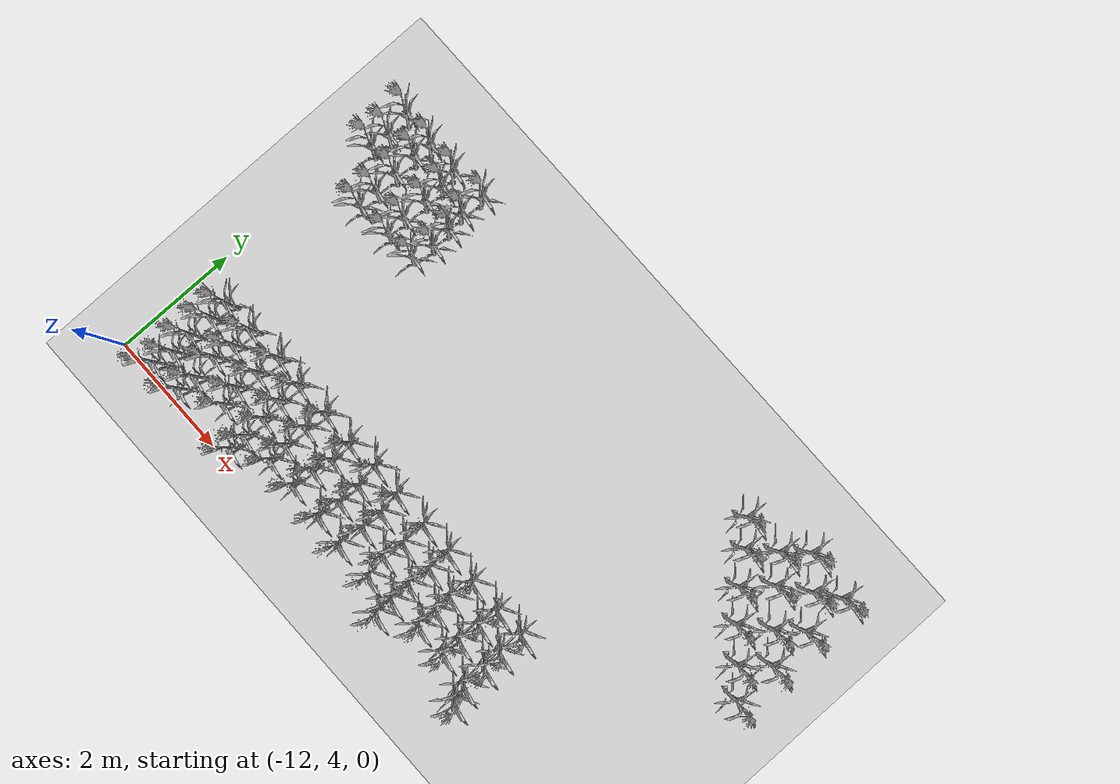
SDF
<sdf version="1.7">
 <world name="farmland_world">
  <model name="ground_plane">
   <static>1</static>
   <link name="link">
    <collision name="collision">
     <geometry><plane><normal>0 0 1</normal><size>40.0 40.0</size></plane></geometry>
     <surface><friction><ode><mu>100</mu><mu2>50</mu2></ode></friction></surface>
    </collision>
    <visual name="visual">
     <cast_shadows>0</cast_shadows>
     <geometry><plane><normal>0 0 1</normal><size>40.0 40.0</size></plane></geometry>
     <material>
      <script><uri>file://media/materials/scripts/gazebo.material</uri><name>Gazebo/Grey</name></script>
     </material>
    </visual>
   </link>
  </model>
  <model name="tree_3_20">
   <static>1</static>
   <link name="link">
    <collision name="collision">
     <geometry><mesh><uri>model://Corn_low_poly/corn.obj</uri><scale>1 1 1</scale></mesh></geometry>
     <surface><friction><ode><mu>100</mu><mu2>50</mu2></ode></friction></surface>
    </collision>
    <visual name="visual">
     <geometry><mesh><uri>model://Corn_low_poly/corn.obj</uri><scale>1 1 1</scale></mesh></geometry>
    </visual>
   </link>
   <pose>-2.3075666654008624 7.308518571701723 0 0 0 0</pose>
  </model>
  <model name="tree_3_21">
   <static>1</static>
   <link name="link">
    <collision name="collision">
     <geometry><mesh><uri>model://Corn_low_poly/corn.obj</uri><scale>1 1 1</scale></mesh></geometry>
     <surface><friction><ode><mu>100</mu><mu2>50</mu2></ode></friction></surface>
    </collision>
    <visual name="visual">
     <geometry><mesh><uri>model://Corn_low_poly/corn.obj</uri><scale>1 1 1</scale></mesh></geometry>
    </visual>
   </link>
   <pose>-2.6623594286711607 7.656644062296135 0 0 0 0</pose>
  </model>
  <model name="tree_3_22">
   <static>1</static>
   <link name="link">
    <collision name="collision">
     <geometry><mesh><uri>model://Corn_low_poly/corn.obj</uri><scale>1 1 1</scale></mesh></geometry>
     <surface><friction><ode><mu>100</mu><mu2>50</mu2></ode></friction></surface>
    </collision>
    <visual name="visual">
     <geometry><mesh><uri>model://Corn_low_poly/corn.obj</uri><scale>1 1 1</scale></mesh></geometry>
    </visual>
   </link>
   <pose>-3.0937954397768683 8.019661259421337 0 0 0 0</pose>
  </model>
  <model name="tree_3_23">
   <static>1</static>
   <link name="link">
    <collision name="collision">
     <geometry><mesh><uri>model://Corn_low_poly/corn.obj</uri><scale>1 1 1</scale></mesh></geometry>
     <surface><friction><ode><mu>100</mu><mu2>50</mu2></ode></friction></surface>
    </collision>
    <visual name="visual">
     <geometry><mesh><uri>model://Corn_low_poly/corn.obj</uri><scale>1 1 1</scale></mesh></geometry>
    </visual>
   </link>
   <pose>-3.4570688301049857 8.398856139786263 0 0 0 0</pose>
  </model>
  <model name="tree_3_24">
   <static>1</static>
   <link name="link">
    <collision name="collision">
     <geometry><mesh><uri>model://Corn_low_poly/corn.obj</uri><scale>1 1 1</scale></mesh></geometry>
     <surface><friction><ode><mu>100</mu><mu2>50</mu2></ode></friction></surface>
    </collision>
    <visual name="visual">
     <geometry><mesh><uri>model://Corn_low_poly/corn.obj</uri><scale>1 1 1</scale></mesh></geometry>
    </visual>
   </link>
   <pose>-3.797962440280629 8.81836654362723 0 0 0 0</pose>
  </model>
  <model name="tree_3_25">
   <static>1</static>
   <link name="link">
    <collision name="collision">
     <geometry><mesh><uri>model://Corn_low_poly/corn.obj</uri><scale>1 1 1</scale></mesh></geometry>
     <surface><friction><ode><mu>100</mu><mu2>50</mu2></ode></friction></surface>
    </collision>
    <visual name="visual">
     <geometry><mesh><uri>model://Corn_low_poly/corn.obj</uri><scale>1 1 1</scale></mesh></geometry>
    </visual>
   </link>
   <pose>-4.105862151312323 9.14127174307103 0 0 0 0</pose>
  </model>
  <model name="tree_3_63">
   <static>1</static>
   <link name="link">
    <collision name="collision">
     <geometry><mesh><uri>model://Corn_low_poly/corn.obj</uri><scale>1 1 1</scale></mesh></geometry>
     <surface><friction><ode><mu>100</mu><mu2>50</mu2></ode></friction></surface>
    </collision>
    <visual name="visual">
     <geometry><mesh><uri>model://Corn_low_poly/corn.obj</uri><scale>1 1 1</scale></mesh></geometry>
    </visual>
   </link>
   <pose>-2.3418813754967016 8.007812253606504 0 0 0 0</pose>
  </model>
  <model name="tree_3_64">
   <static>1</static>
   <link name="link">
    <collision name="collision">
     <geometry><mesh><uri>model://Corn_low_poly/corn.obj</uri><scale>1 1 1</scale></mesh></geometry>
     <surface><friction><ode><mu>100</mu><mu2>50</mu2></ode></friction></surface>
    </collision>
    <visual name="visual">
     <geometry><mesh><uri>model://Corn_low_poly/corn.obj</uri><scale>1 1 1</scale></mesh></geometry>
    </visual>
   </link>
   <pose>-2.6922594340320156 8.358449945702645 0 0 0 0</pose>
  </model>
  <model name="tree_3_65">
   <static>1</static>
   <link name="link">
    <collision name="collision">
     <geometry><mesh><uri>model://Corn_low_poly/corn.obj</uri><scale>1 1 1</scale></mesh></geometry>
     <surface><friction><ode><mu>100</mu><mu2>50</mu2></ode></friction></surface>
    </collision>
    <visual name="visual">
     <geometry><mesh><uri>model://Corn_low_poly/corn.obj</uri><scale>1 1 1</scale></mesh></geometry>
    </visual>
   </link>
   <pose>-3.127816813089691 8.793115844541859 0 0 0 0</pose>
  </model>
  <model name="tree_3_66">
   <static>1</static>
   <link name="link">
    <collision name="collision">
     <geometry><mesh><uri>model://Corn_low_poly/corn.obj</uri><scale>1 1 1</scale></mesh></geometry>
     <surface><friction><ode><mu>100</mu><mu2>50</mu2></ode></friction></surface>
    </collision>
    <visual name="visual">
     <geometry><mesh><uri>model://Corn_low_poly/corn.obj</uri><scale>1 1 1</scale></mesh></geometry>
    </visual>
   </link>
   <pose>-3.4389509334060415 9.157157088411383 0 0 0 0</pose>
  </model>
  <model name="tree_3_106">
   <static>1</static>
   <link name="link">
    <collision name="collision">
     <geometry><mesh><uri>model://Corn_low_poly/corn.obj</uri><scale>1 1 1</scale></mesh></geometry>
     <surface><friction><ode><mu>100</mu><mu2>50</mu2></ode></friction></surface>
    </collision>
    <visual name="visual">
     <geometry><mesh><uri>model://Corn_low_poly/corn.obj</uri><scale>1 1 1</scale></mesh></geometry>
    </visual>
   </link>
   <pose>-2.3757347119303582 8.67964209510847 0 0 0 0</pose>
  </model>
  <model name="tree_3_107">
   <static>1</static>
   <link name="link">
    <collision name="collision">
     <geometry><mesh><uri>model://Corn_low_poly/corn.obj</uri><scale>1 1 1</scale></mesh></geometry>
     <surface><friction><ode><mu>100</mu><mu2>50</mu2></ode></friction></surface>
    </collision>
    <visual name="visual">
     <geometry><mesh><uri>model://Corn_low_poly/corn.obj</uri><scale>1 1 1</scale></mesh></geometry>
    </visual>
   </link>
   <pose>-2.710032986190456 9.124085424573753 0 0 0 0</pose>
  </model>
  <model name="tree_3_108">
   <static>1</static>
   <link name="link">
    <collision name="collision">
     <geometry><mesh><uri>model://Corn_low_poly/corn.obj</uri><scale>1 1 1</scale></mesh></geometry>
     <surface><friction><ode><mu>100</mu><mu2>50</mu2></ode></friction></surface>
    </collision>
    <visual name="visual">
     <geometry><mesh><uri>model://Corn_low_poly/corn.obj</uri><scale>1 1 1</scale></mesh></geometry>
    </visual>
   </link>
   <pose>-3.135405919508511 9.476546193045763 0 0 0 0</pose>
  </model>
  <model name="tree_3_149">
   <static>1</static>
   <link name="link">
    <collision name="collision">
     <geometry><mesh><uri>model://Corn_low_poly/corn.obj</uri><scale>1 1 1</scale></mesh></geometry>
     <surface><friction><ode><mu>100</mu><mu2>50</mu2></ode></friction></surface>
    </collision>
    <visual name="visual">
     <geometry><mesh><uri>model://Corn_low_poly/corn.obj</uri><scale>1 1 1</scale></mesh></geometry>
    </visual>
   </link>
   <pose>-2.378560637580622 9.371502549188891 0 0 0 0</pose>
  </model>
  <model name="tree_3_2835">
   <static>1</static>
   <link name="link">
    <collision name="collision">
     <geometry><mesh><uri>model://Corn_low_poly/corn.obj</uri><scale>1 1 1</scale></mesh></geometry>
     <surface><friction><ode><mu>100</mu><mu2>50</mu2></ode></friction></surface>
    </collision>
    <visual name="visual">
     <geometry><mesh><uri>model://Corn_low_poly/corn.obj</uri><scale>1 1 1</scale></mesh></geometry>
    </visual>
   </link>
   <pose>-4.957581709730349 4.374587162850241 0 0 0 0</pose>
  </model>
  <model name="tree_3_2838">
   <static>1</static>
   <link name="link">
    <collision name="collision">
     <geometry><mesh><uri>model://Corn_low_poly/corn.obj</uri><scale>1 1 1</scale></mesh></geometry>
     <surface><friction><ode><mu>100</mu><mu2>50</mu2></ode></friction></surface>
    </collision>
    <visual name="visual">
     <geometry><mesh><uri>model://Corn_low_poly/corn.obj</uri><scale>1 1 1</scale></mesh></geometry>
    </visual>
   </link>
   <pose>-6.587555065589279 4.369274960571628 0 0 0 0</pose>
  </model>
  <model name="tree_3_2844">
   <static>1</static>
   <link name="link">
    <collision name="collision">
     <geometry><mesh><uri>model://Corn_low_poly/corn.obj</uri><scale>1 1 1</scale></mesh></geometry>
     <surface><friction><ode><mu>100</mu><mu2>50</mu2></ode></friction></surface>
    </collision>
    <visual name="visual">
     <geometry><mesh><uri>model://Corn_low_poly/corn.obj</uri><scale>1 1 1</scale></mesh></geometry>
    </visual>
   </link>
   <pose>-9.670027935349315 4.355374812410951 0 0 0 0</pose>
  </model>
  <model name="tree_3_2846">
   <static>1</static>
   <link name="link">
    <collision name="collision">
     <geometry><mesh><uri>model://Corn_low_poly/corn.obj</uri><scale>1 1 1</scale></mesh></geometry>
     <surface><friction><ode><mu>100</mu><mu2>50</mu2></ode></friction></surface>
    </collision>
    <visual name="visual">
     <geometry><mesh><uri>model://Corn_low_poly/corn.obj</uri><scale>1 1 1</scale></mesh></geometry>
    </visual>
   </link>
   <pose>-10.782607461861842 4.365781705550659 0 0 0 0</pose>
  </model>
  <model name="tree_3_2847">
   <static>1</static>
   <link name="link">
    <collision name="collision">
     <geometry><mesh><uri>model://Corn_low_poly/corn.obj</uri><scale>1 1 1</scale></mesh></geometry>
     <surface><friction><ode><mu>100</mu><mu2>50</mu2></ode></friction></surface>
    </collision>
    <visual name="visual">
     <geometry><mesh><uri>model://Corn_low_poly/corn.obj</uri><scale>1 1 1</scale></mesh></geometry>
    </visual>
   </link>
   <pose>-11.296474430773461 4.3457936772506605 0 0 0 0</pose>
  </model>
  <model name="tree_3_2859">
   <static>1</static>
   <link name="link">
    <collision name="collision">
     <geometry><mesh><uri>model://Corn_low_poly/corn.obj</uri><scale>1 1 1</scale></mesh></geometry>
     <surface><friction><ode><mu>100</mu><mu2>50</mu2></ode></friction></surface>
    </collision>
    <visual name="visual">
     <geometry><mesh><uri>model://Corn_low_poly/corn.obj</uri><scale>1 1 1</scale></mesh></geometry>
    </visual>
   </link>
   <pose>-5.035513562441044 4.62524669428299 0 0 0 0</pose>
  </model>
  <model name="tree_3_2860">
   <static>1</static>
   <link name="link">
    <collision name="collision">
     <geometry><mesh><uri>model://Corn_low_poly/corn.obj</uri><scale>1 1 1</scale></mesh></geometry>
     <surface><friction><ode><mu>100</mu><mu2>50</mu2></ode></friction></surface>
    </collision>
    <visual name="visual">
     <geometry><mesh><uri>model://Corn_low_poly/corn.obj</uri><scale>1 1 1</scale></mesh></geometry>
    </visual>
   </link>
   <pose>-5.571186242636416 4.706984083072253 0 0 0 0</pose>
  </model>
  <model name="tree_3_2861">
   <static>1</static>
   <link name="link">
    <collision name="collision">
     <geometry><mesh><uri>model://Corn_low_poly/corn.obj</uri><scale>1 1 1</scale></mesh></geometry>
     <surface><friction><ode><mu>100</mu><mu2>50</mu2></ode></friction></surface>
    </collision>
    <visual name="visual">
     <geometry><mesh><uri>model://Corn_low_poly/corn.obj</uri><scale>1 1 1</scale></mesh></geometry>
    </visual>
   </link>
   <pose>-6.074614533174864 4.706707117418745 0 0 0 0</pose>
  </model>
  <model name="tree_3_2862">
   <static>1</static>
   <link name="link">
    <collision name="collision">
     <geometry><mesh><uri>model://Corn_low_poly/corn.obj</uri><scale>1 1 1</scale></mesh></geometry>
     <surface><friction><ode><mu>100</mu><mu2>50</mu2></ode></friction></surface>
    </collision>
    <visual name="visual">
     <geometry><mesh><uri>model://Corn_low_poly/corn.obj</uri><scale>1 1 1</scale></mesh></geometry>
    </visual>
   </link>
   <pose>-6.602579152025934 4.654860640155452 0 0 0 0</pose>
  </model>
  <model name="tree_3_2863">
   <static>1</static>
   <link name="link">
    <collision name="collision">
     <geometry><mesh><uri>model://Corn_low_poly/corn.obj</uri><scale>1 1 1</scale></mesh></geometry>
     <surface><friction><ode><mu>100</mu><mu2>50</mu2></ode></friction></surface>
    </collision>
    <visual name="visual">
     <geometry><mesh><uri>model://Corn_low_poly/corn.obj</uri><scale>1 1 1</scale></mesh></geometry>
    </visual>
   </link>
   <pose>-7.047534383648271 4.635033495849292 0 0 0 0</pose>
  </model>
  <model name="tree_3_2864">
   <static>1</static>
   <link name="link">
    <collision name="collision">
     <geometry><mesh><uri>model://Corn_low_poly/corn.obj</uri><scale>1 1 1</scale></mesh></geometry>
     <surface><friction><ode><mu>100</mu><mu2>50</mu2></ode></friction></surface>
    </collision>
    <visual name="visual">
     <geometry><mesh><uri>model://Corn_low_poly/corn.obj</uri><scale>1 1 1</scale></mesh></geometry>
    </visual>
   </link>
   <pose>-7.658123118133316 4.621198499198797 0 0 0 0</pose>
  </model>
  <model name="tree_3_2865">
   <static>1</static>
   <link name="link">
    <collision name="collision">
     <geometry><mesh><uri>model://Corn_low_poly/corn.obj</uri><scale>1 1 1</scale></mesh></geometry>
     <surface><friction><ode><mu>100</mu><mu2>50</mu2></ode></friction></surface>
    </collision>
    <visual name="visual">
     <geometry><mesh><uri>model://Corn_low_poly/corn.obj</uri><scale>1 1 1</scale></mesh></geometry>
    </visual>
   </link>
   <pose>-8.145893256973238 4.672982587217448 0 0 0 0</pose>
  </model>
  <model name="tree_3_2866">
   <static>1</static>
   <link name="link">
    <collision name="collision">
     <geometry><mesh><uri>model://Corn_low_poly/corn.obj</uri><scale>1 1 1</scale></mesh></geometry>
     <surface><friction><ode><mu>100</mu><mu2>50</mu2></ode></friction></surface>
    </collision>
    <visual name="visual">
     <geometry><mesh><uri>model://Corn_low_poly/corn.obj</uri><scale>1 1 1</scale></mesh></geometry>
    </visual>
   </link>
   <pose>-8.701975132938157 4.6875868052381575 0 0 0 0</pose>
  </model>
  <model name="tree_3_2867">
   <static>1</static>
   <link name="link">
    <collision name="collision">
     <geometry><mesh><uri>model://Corn_low_poly/corn.obj</uri><scale>1 1 1</scale></mesh></geometry>
     <surface><friction><ode><mu>100</mu><mu2>50</mu2></ode></friction></surface>
    </collision>
    <visual name="visual">
     <geometry><mesh><uri>model://Corn_low_poly/corn.obj</uri><scale>1 1 1</scale></mesh></geometry>
    </visual>
   </link>
   <pose>-9.180140325862716 4.677596620578467 0 0 0 0</pose>
  </model>
  <model name="tree_3_2868">
   <static>1</static>
   <link name="link">
    <collision name="collision">
     <geometry><mesh><uri>model://Corn_low_poly/corn.obj</uri><scale>1 1 1</scale></mesh></geometry>
     <surface><friction><ode><mu>100</mu><mu2>50</mu2></ode></friction></surface>
    </collision>
    <visual name="visual">
     <geometry><mesh><uri>model://Corn_low_poly/corn.obj</uri><scale>1 1 1</scale></mesh></geometry>
    </visual>
   </link>
   <pose>-9.673553545816935 4.621028869728322 0 0 0 0</pose>
  </model>
  <model name="tree_3_2869">
   <static>1</static>
   <link name="link">
    <collision name="collision">
     <geometry><mesh><uri>model://Corn_low_poly/corn.obj</uri><scale>1 1 1</scale></mesh></geometry>
     <surface><friction><ode><mu>100</mu><mu2>50</mu2></ode></friction></surface>
    </collision>
    <visual name="visual">
     <geometry><mesh><uri>model://Corn_low_poly/corn.obj</uri><scale>1 1 1</scale></mesh></geometry>
    </visual>
   </link>
   <pose>-10.188198589893595 4.706108518001108 0 0 0 0</pose>
  </model>
  <model name="tree_3_2870">
   <static>1</static>
   <link name="link">
    <collision name="collision">
     <geometry><mesh><uri>model://Corn_low_poly/corn.obj</uri><scale>1 1 1</scale></mesh></geometry>
     <surface><friction><ode><mu>100</mu><mu2>50</mu2></ode></friction></surface>
    </collision>
    <visual name="visual">
     <geometry><mesh><uri>model://Corn_low_poly/corn.obj</uri><scale>1 1 1</scale></mesh></geometry>
    </visual>
   </link>
   <pose>-10.753170550997314 4.650115078127902 0 0 0 0</pose>
  </model>
  <model name="tree_3_2871">
   <static>1</static>
   <link name="link">
    <collision name="collision">
     <geometry><mesh><uri>model://Corn_low_poly/corn.obj</uri><scale>1 1 1</scale></mesh></geometry>
     <surface><friction><ode><mu>100</mu><mu2>50</mu2></ode></friction></surface>
    </collision>
    <visual name="visual">
     <geometry><mesh><uri>model://Corn_low_poly/corn.obj</uri><scale>1 1 1</scale></mesh></geometry>
    </visual>
   </link>
   <pose>-11.218799909103696 4.656327534527086 0 0 0 0</pose>
  </model>
  <model name="tree_3_2883">
   <static>1</static>
   <link name="link">
    <collision name="collision">
     <geometry><mesh><uri>model://Corn_low_poly/corn.obj</uri><scale>1 1 1</scale></mesh></geometry>
     <surface><friction><ode><mu>100</mu><mu2>50</mu2></ode></friction></surface>
    </collision>
    <visual name="visual">
     <geometry><mesh><uri>model://Corn_low_poly/corn.obj</uri><scale>1 1 1</scale></mesh></geometry>
    </visual>
   </link>
   <pose>-5.037532288428407 5.0029875615076 0 0 0 0</pose>
  </model>
  <model name="tree_3_2884">
   <static>1</static>
   <link name="link">
    <collision name="collision">
     <geometry><mesh><uri>model://Corn_low_poly/corn.obj</uri><scale>1 1 1</scale></mesh></geometry>
     <surface><friction><ode><mu>100</mu><mu2>50</mu2></ode></friction></surface>
    </collision>
    <visual name="visual">
     <geometry><mesh><uri>model://Corn_low_poly/corn.obj</uri><scale>1 1 1</scale></mesh></geometry>
    </visual>
   </link>
   <pose>-5.5483860871230295 4.991023531897443 0 0 0 0</pose>
  </model>
  <model name="tree_3_2885">
   <static>1</static>
   <link name="link">
    <collision name="collision">
     <geometry><mesh><uri>model://Corn_low_poly/corn.obj</uri><scale>1 1 1</scale></mesh></geometry>
     <surface><friction><ode><mu>100</mu><mu2>50</mu2></ode></friction></surface>
    </collision>
    <visual name="visual">
     <geometry><mesh><uri>model://Corn_low_poly/corn.obj</uri><scale>1 1 1</scale></mesh></geometry>
    </visual>
   </link>
   <pose>-6.081733995830759 5.022385284284059 0 0 0 0</pose>
  </model>
  <model name="tree_3_2886">
   <static>1</static>
   <link name="link">
    <collision name="collision">
     <geometry><mesh><uri>model://Corn_low_poly/corn.obj</uri><scale>1 1 1</scale></mesh></geometry>
     <surface><friction><ode><mu>100</mu><mu2>50</mu2></ode></friction></surface>
    </collision>
    <visual name="visual">
     <geometry><mesh><uri>model://Corn_low_poly/corn.obj</uri><scale>1 1 1</scale></mesh></geometry>
    </visual>
   </link>
   <pose>-6.591047561342253 4.976195758364337 0 0 0 0</pose>
  </model>
  <model name="tree_3_2887">
   <static>1</static>
   <link name="link">
    <collision name="collision">
     <geometry><mesh><uri>model://Corn_low_poly/corn.obj</uri><scale>1 1 1</scale></mesh></geometry>
     <surface><friction><ode><mu>100</mu><mu2>50</mu2></ode></friction></surface>
    </collision>
    <visual name="visual">
     <geometry><mesh><uri>model://Corn_low_poly/corn.obj</uri><scale>1 1 1</scale></mesh></geometry>
    </visual>
   </link>
   <pose>-7.135284685214054 4.9811001822769425 0 0 0 0</pose>
  </model>
  <model name="tree_3_2888">
   <static>1</static>
   <link name="link">
    <collision name="collision">
     <geometry><mesh><uri>model://Corn_low_poly/corn.obj</uri><scale>1 1 1</scale></mesh></geometry>
     <surface><friction><ode><mu>100</mu><mu2>50</mu2></ode></friction></surface>
    </collision>
    <visual name="visual">
     <geometry><mesh><uri>model://Corn_low_poly/corn.obj</uri><scale>1 1 1</scale></mesh></geometry>
    </visual>
   </link>
   <pose>-7.608202254622473 5.019624284785507 0 0 0 0</pose>
  </model>
  <model name="tree_3_2889">
   <static>1</static>
   <link name="link">
    <collision name="collision">
     <geometry><mesh><uri>model://Corn_low_poly/corn.obj</uri><scale>1 1 1</scale></mesh></geometry>
     <surface><friction><ode><mu>100</mu><mu2>50</mu2></ode></friction></surface>
    </collision>
    <visual name="visual">
     <geometry><mesh><uri>model://Corn_low_poly/corn.obj</uri><scale>1 1 1</scale></mesh></geometry>
    </visual>
   </link>
   <pose>-8.098821132017454 5.025068606920608 0 0 0 0</pose>
  </model>
  <model name="tree_3_2890">
   <static>1</static>
   <link name="link">
    <collision name="collision">
     <geometry><mesh><uri>model://Corn_low_poly/corn.obj</uri><scale>1 1 1</scale></mesh></geometry>
     <surface><friction><ode><mu>100</mu><mu2>50</mu2></ode></friction></surface>
    </collision>
    <visual name="visual">
     <geometry><mesh><uri>model://Corn_low_poly/corn.obj</uri><scale>1 1 1</scale></mesh></geometry>
    </visual>
   </link>
   <pose>-8.681075485819715 5.036752011451879 0 0 0 0</pose>
  </model>
  <model name="tree_3_2891">
   <static>1</static>
   <link name="link">
    <collision name="collision">
     <geometry><mesh><uri>model://Corn_low_poly/corn.obj</uri><scale>1 1 1</scale></mesh></geometry>
     <surface><friction><ode><mu>100</mu><mu2>50</mu2></ode></friction></surface>
    </collision>
    <visual name="visual">
     <geometry><mesh><uri>model://Corn_low_poly/corn.obj</uri><scale>1 1 1</scale></mesh></geometry>
    </visual>
   </link>
   <pose>-9.197691913462398 4.973714271480552 0 0 0 0</pose>
  </model>
  <model name="tree_3_2892">
   <static>1</static>
   <link name="link">
    <collision name="collision">
     <geometry><mesh><uri>model://Corn_low_poly/corn.obj</uri><scale>1 1 1</scale></mesh></geometry>
     <surface><friction><ode><mu>100</mu><mu2>50</mu2></ode></friction></surface>
    </collision>
    <visual name="visual">
     <geometry><mesh><uri>model://Corn_low_poly/corn.obj</uri><scale>1 1 1</scale></mesh></geometry>
    </visual>
   </link>
   <pose>-9.675864396631058 4.9906826727781 0 0 0 0</pose>
  </model>
  <model name="tree_3_2893">
   <static>1</static>
   <link name="link">
    <collision name="collision">
     <geometry><mesh><uri>model://Corn_low_poly/corn.obj</uri><scale>1 1 1</scale></mesh></geometry>
     <surface><friction><ode><mu>100</mu><mu2>50</mu2></ode></friction></surface>
    </collision>
    <visual name="visual">
     <geometry><mesh><uri>model://Corn_low_poly/corn.obj</uri><scale>1 1 1</scale></mesh></geometry>
    </visual>
   </link>
   <pose>-10.260671570922613 4.990627014965063 0 0 0 0</pose>
  </model>
  <model name="tree_3_2894">
   <static>1</static>
   <link name="link">
    <collision name="collision">
     <geometry><mesh><uri>model://Corn_low_poly/corn.obj</uri><scale>1 1 1</scale></mesh></geometry>
     <surface><friction><ode><mu>100</mu><mu2>50</mu2></ode></friction></surface>
    </collision>
    <visual name="visual">
     <geometry><mesh><uri>model://Corn_low_poly/corn.obj</uri><scale>1 1 1</scale></mesh></geometry>
    </visual>
   </link>
   <pose>-10.788873069767442 5.031162737132273 0 0 0 0</pose>
  </model>
  <model name="tree_3_2895">
   <static>1</static>
   <link name="link">
    <collision name="collision">
     <geometry><mesh><uri>model://Corn_low_poly/corn.obj</uri><scale>1 1 1</scale></mesh></geometry>
     <surface><friction><ode><mu>100</mu><mu2>50</mu2></ode></friction></surface>
    </collision>
    <visual name="visual">
     <geometry><mesh><uri>model://Corn_low_poly/corn.obj</uri><scale>1 1 1</scale></mesh></geometry>
    </visual>
   </link>
   <pose>-11.25431729453118 4.987334018337678 0 0 0 0</pose>
  </model>
  <model name="tree_3_2907">
   <static>1</static>
   <link name="link">
    <collision name="collision">
     <geometry><mesh><uri>model://Corn_low_poly/corn.obj</uri><scale>1 1 1</scale></mesh></geometry>
     <surface><friction><ode><mu>100</mu><mu2>50</mu2></ode></friction></surface>
    </collision>
    <visual name="visual">
     <geometry><mesh><uri>model://Corn_low_poly/corn.obj</uri><scale>1 1 1</scale></mesh></geometry>
    </visual>
   </link>
   <pose>-5.040088936885129 5.2996402220349665 0 0 0 0</pose>
  </model>
  <model name="tree_3_2908">
   <static>1</static>
   <link name="link">
    <collision name="collision">
     <geometry><mesh><uri>model://Corn_low_poly/corn.obj</uri><scale>1 1 1</scale></mesh></geometry>
     <surface><friction><ode><mu>100</mu><mu2>50</mu2></ode></friction></surface>
    </collision>
    <visual name="visual">
     <geometry><mesh><uri>model://Corn_low_poly/corn.obj</uri><scale>1 1 1</scale></mesh></geometry>
    </visual>
   </link>
   <pose>-5.522044902780307 5.336371654634435 0 0 0 0</pose>
  </model>
  <model name="tree_3_2909">
   <static>1</static>
   <link name="link">
    <collision name="collision">
     <geometry><mesh><uri>model://Corn_low_poly/corn.obj</uri><scale>1 1 1</scale></mesh></geometry>
     <surface><friction><ode><mu>100</mu><mu2>50</mu2></ode></friction></surface>
    </collision>
    <visual name="visual">
     <geometry><mesh><uri>model://Corn_low_poly/corn.obj</uri><scale>1 1 1</scale></mesh></geometry>
    </visual>
   </link>
   <pose>-6.080042212694258 5.286344914623679 0 0 0 0</pose>
  </model>
  <model name="tree_3_2910">
   <static>1</static>
   <link name="link">
    <collision name="collision">
     <geometry><mesh><uri>model://Corn_low_poly/corn.obj</uri><scale>1 1 1</scale></mesh></geometry>
     <surface><friction><ode><mu>100</mu><mu2>50</mu2></ode></friction></surface>
    </collision>
    <visual name="visual">
     <geometry><mesh><uri>model://Corn_low_poly/corn.obj</uri><scale>1 1 1</scale></mesh></geometry>
    </visual>
   </link>
   <pose>-6.556372494289426 5.331110186289368 0 0 0 0</pose>
  </model>
  <model name="tree_3_2911">
   <static>1</static>
   <link name="link">
    <collision name="collision">
     <geometry><mesh><uri>model://Corn_low_poly/corn.obj</uri><scale>1 1 1</scale></mesh></geometry>
     <surface><friction><ode><mu>100</mu><mu2>50</mu2></ode></friction></surface>
    </collision>
    <visual name="visual">
     <geometry><mesh><uri>model://Corn_low_poly/corn.obj</uri><scale>1 1 1</scale></mesh></geometry>
    </visual>
   </link>
   <pose>-7.0668175531183905 5.291233136587749 0 0 0 0</pose>
  </model>
  <model name="tree_3_2912">
   <static>1</static>
   <link name="link">
    <collision name="collision">
     <geometry><mesh><uri>model://Corn_low_poly/corn.obj</uri><scale>1 1 1</scale></mesh></geometry>
     <surface><friction><ode><mu>100</mu><mu2>50</mu2></ode></friction></surface>
    </collision>
    <visual name="visual">
     <geometry><mesh><uri>model://Corn_low_poly/corn.obj</uri><scale>1 1 1</scale></mesh></geometry>
    </visual>
   </link>
   <pose>-7.59328651460893 5.350055772363433 0 0 0 0</pose>
  </model>
  <model name="tree_3_2913">
   <static>1</static>
   <link name="link">
    <collision name="collision">
     <geometry><mesh><uri>model://Corn_low_poly/corn.obj</uri><scale>1 1 1</scale></mesh></geometry>
     <surface><friction><ode><mu>100</mu><mu2>50</mu2></ode></friction></surface>
    </collision>
    <visual name="visual">
     <geometry><mesh><uri>model://Corn_low_poly/corn.obj</uri><scale>1 1 1</scale></mesh></geometry>
    </visual>
   </link>
   <pose>-8.089335329961225 5.36380761927445 0 0 0 0</pose>
  </model>
  <model name="tree_3_2914">
   <static>1</static>
   <link name="link">
    <collision name="collision">
     <geometry><mesh><uri>model://Corn_low_poly/corn.obj</uri><scale>1 1 1</scale></mesh></geometry>
     <surface><friction><ode><mu>100</mu><mu2>50</mu2></ode></friction></surface>
    </collision>
    <visual name="visual">
     <geometry><mesh><uri>model://Corn_low_poly/corn.obj</uri><scale>1 1 1</scale></mesh></geometry>
    </visual>
   </link>
   <pose>-8.605741957416313 5.3295296620081665 0 0 0 0</pose>
  </model>
  <model name="tree_3_2915">
   <static>1</static>
   <link name="link">
    <collision name="collision">
     <geometry><mesh><uri>model://Corn_low_poly/corn.obj</uri><scale>1 1 1</scale></mesh></geometry>
     <surface><friction><ode><mu>100</mu><mu2>50</mu2></ode></friction></surface>
    </collision>
    <visual name="visual">
     <geometry><mesh><uri>model://Corn_low_poly/corn.obj</uri><scale>1 1 1</scale></mesh></geometry>
    </visual>
   </link>
   <pose>-9.198532791389471 5.342594270770508 0 0 0 0</pose>
  </model>
  <model name="tree_3_2916">
   <static>1</static>
   <link name="link">
    <collision name="collision">
     <geometry><mesh><uri>model://Corn_low_poly/corn.obj</uri><scale>1 1 1</scale></mesh></geometry>
     <surface><friction><ode><mu>100</mu><mu2>50</mu2></ode></friction></surface>
    </collision>
    <visual name="visual">
     <geometry><mesh><uri>model://Corn_low_poly/corn.obj</uri><scale>1 1 1</scale></mesh></geometry>
    </visual>
   </link>
   <pose>-9.721598214892188 5.312514080709026 0 0 0 0</pose>
  </model>
  <model name="tree_3_2917">
   <static>1</static>
   <link name="link">
    <collision name="collision">
     <geometry><mesh><uri>model://Corn_low_poly/corn.obj</uri><scale>1 1 1</scale></mesh></geometry>
     <surface><friction><ode><mu>100</mu><mu2>50</mu2></ode></friction></surface>
    </collision>
    <visual name="visual">
     <geometry><mesh><uri>model://Corn_low_poly/corn.obj</uri><scale>1 1 1</scale></mesh></geometry>
    </visual>
   </link>
   <pose>-10.230143720518697 5.341179242783698 0 0 0 0</pose>
  </model>
  <model name="tree_3_2918">
   <static>1</static>
   <link name="link">
    <collision name="collision">
     <geometry><mesh><uri>model://Corn_low_poly/corn.obj</uri><scale>1 1 1</scale></mesh></geometry>
     <surface><friction><ode><mu>100</mu><mu2>50</mu2></ode></friction></surface>
    </collision>
    <visual name="visual">
     <geometry><mesh><uri>model://Corn_low_poly/corn.obj</uri><scale>1 1 1</scale></mesh></geometry>
    </visual>
   </link>
   <pose>-10.738298082448628 5.344320469065689 0 0 0 0</pose>
  </model>
  <model name="tree_3_2919">
   <static>1</static>
   <link name="link">
    <collision name="collision">
     <geometry><mesh><uri>model://Corn_low_poly/corn.obj</uri><scale>1 1 1</scale></mesh></geometry>
     <surface><friction><ode><mu>100</mu><mu2>50</mu2></ode></friction></surface>
    </collision>
    <visual name="visual">
     <geometry><mesh><uri>model://Corn_low_poly/corn.obj</uri><scale>1 1 1</scale></mesh></geometry>
    </visual>
   </link>
   <pose>-11.251168279420622 5.362101297166285 0 0 0 0</pose>
  </model>
  <model name="tree_3_2931">
   <static>1</static>
   <link name="link">
    <collision name="collision">
     <geometry><mesh><uri>model://Corn_low_poly/corn.obj</uri><scale>1 1 1</scale></mesh></geometry>
     <surface><friction><ode><mu>100</mu><mu2>50</mu2></ode></friction></surface>
    </collision>
    <visual name="visual">
     <geometry><mesh><uri>model://Corn_low_poly/corn.obj</uri><scale>1 1 1</scale></mesh></geometry>
    </visual>
   </link>
   <pose>-5.017027366072219 5.677977053674842 0 0 0 0</pose>
  </model>
  <model name="tree_3_2932">
   <static>1</static>
   <link name="link">
    <collision name="collision">
     <geometry><mesh><uri>model://Corn_low_poly/corn.obj</uri><scale>1 1 1</scale></mesh></geometry>
     <surface><friction><ode><mu>100</mu><mu2>50</mu2></ode></friction></surface>
    </collision>
    <visual name="visual">
     <geometry><mesh><uri>model://Corn_low_poly/corn.obj</uri><scale>1 1 1</scale></mesh></geometry>
    </visual>
   </link>
   <pose>-5.482902530448401 5.652082992400311 0 0 0 0</pose>
  </model>
  <model name="tree_3_2933">
   <static>1</static>
   <link name="link">
    <collision name="collision">
     <geometry><mesh><uri>model://Corn_low_poly/corn.obj</uri><scale>1 1 1</scale></mesh></geometry>
     <surface><friction><ode><mu>100</mu><mu2>50</mu2></ode></friction></surface>
    </collision>
    <visual name="visual">
     <geometry><mesh><uri>model://Corn_low_poly/corn.obj</uri><scale>1 1 1</scale></mesh></geometry>
    </visual>
   </link>
   <pose>-6.013208473788064 5.645782142952633 0 0 0 0</pose>
  </model>
  <model name="tree_3_2934">
   <static>1</static>
   <link name="link">
    <collision name="collision">
     <geometry><mesh><uri>model://Corn_low_poly/corn.obj</uri><scale>1 1 1</scale></mesh></geometry>
     <surface><friction><ode><mu>100</mu><mu2>50</mu2></ode></friction></surface>
    </collision>
    <visual name="visual">
     <geometry><mesh><uri>model://Corn_low_poly/corn.obj</uri><scale>1 1 1</scale></mesh></geometry>
    </visual>
   </link>
   <pose>-6.558277864151011 5.668575211673812 0 0 0 0</pose>
  </model>
  <model name="tree_3_2935">
   <static>1</static>
   <link name="link">
    <collision name="collision">
     <geometry><mesh><uri>model://Corn_low_poly/corn.obj</uri><scale>1 1 1</scale></mesh></geometry>
     <surface><friction><ode><mu>100</mu><mu2>50</mu2></ode></friction></surface>
    </collision>
    <visual name="visual">
     <geometry><mesh><uri>model://Corn_low_poly/corn.obj</uri><scale>1 1 1</scale></mesh></geometry>
    </visual>
   </link>
   <pose>-7.0729502003789655 5.673451076070037 0 0 0 0</pose>
  </model>
  <model name="tree_3_2936">
   <static>1</static>
   <link name="link">
    <collision name="collision">
     <geometry><mesh><uri>model://Corn_low_poly/corn.obj</uri><scale>1 1 1</scale></mesh></geometry>
     <surface><friction><ode><mu>100</mu><mu2>50</mu2></ode></friction></surface>
    </collision>
    <visual name="visual">
     <geometry><mesh><uri>model://Corn_low_poly/corn.obj</uri><scale>1 1 1</scale></mesh></geometry>
    </visual>
   </link>
   <pose>-7.645369237264167 5.6717049292525825 0 0 0 0</pose>
  </model>
  <model name="tree_3_2937">
   <static>1</static>
   <link name="link">
    <collision name="collision">
     <geometry><mesh><uri>model://Corn_low_poly/corn.obj</uri><scale>1 1 1</scale></mesh></geometry>
     <surface><friction><ode><mu>100</mu><mu2>50</mu2></ode></friction></surface>
    </collision>
    <visual name="visual">
     <geometry><mesh><uri>model://Corn_low_poly/corn.obj</uri><scale>1 1 1</scale></mesh></geometry>
    </visual>
   </link>
   <pose>-8.146785277405318 5.714358942031591 0 0 0 0</pose>
  </model>
  <model name="tree_3_2938">
   <static>1</static>
   <link name="link">
    <collision name="collision">
     <geometry><mesh><uri>model://Corn_low_poly/corn.obj</uri><scale>1 1 1</scale></mesh></geometry>
     <surface><friction><ode><mu>100</mu><mu2>50</mu2></ode></friction></surface>
    </collision>
    <visual name="visual">
     <geometry><mesh><uri>model://Corn_low_poly/corn.obj</uri><scale>1 1 1</scale></mesh></geometry>
    </visual>
   </link>
   <pose>-8.62429095645597 5.649521661967262 0 0 0 0</pose>
  </model>
  <model name="tree_3_2939">
   <static>1</static>
   <link name="link">
    <collision name="collision">
     <geometry><mesh><uri>model://Corn_low_poly/corn.obj</uri><scale>1 1 1</scale></mesh></geometry>
     <surface><friction><ode><mu>100</mu><mu2>50</mu2></ode></friction></surface>
    </collision>
    <visual name="visual">
     <geometry><mesh><uri>model://Corn_low_poly/corn.obj</uri><scale>1 1 1</scale></mesh></geometry>
    </visual>
   </link>
   <pose>-9.159271538745132 5.67862967680633 0 0 0 0</pose>
  </model>
  <model name="tree_3_2940">
   <static>1</static>
   <link name="link">
    <collision name="collision">
     <geometry><mesh><uri>model://Corn_low_poly/corn.obj</uri><scale>1 1 1</scale></mesh></geometry>
     <surface><friction><ode><mu>100</mu><mu2>50</mu2></ode></friction></surface>
    </collision>
    <visual name="visual">
     <geometry><mesh><uri>model://Corn_low_poly/corn.obj</uri><scale>1 1 1</scale></mesh></geometry>
    </visual>
   </link>
   <pose>-9.716954767653764 5.66053356670235 0 0 0 0</pose>
  </model>
  <model name="tree_3_2941">
   <static>1</static>
   <link name="link">
    <collision name="collision">
     <geometry><mesh><uri>model://Corn_low_poly/corn.obj</uri><scale>1 1 1</scale></mesh></geometry>
     <surface><friction><ode><mu>100</mu><mu2>50</mu2></ode></friction></surface>
    </collision>
    <visual name="visual">
     <geometry><mesh><uri>model://Corn_low_poly/corn.obj</uri><scale>1 1 1</scale></mesh></geometry>
    </visual>
   </link>
   <pose>-10.181003169355858 5.697751729437451 0 0 0 0</pose>
  </model>
  <model name="tree_3_2942">
   <static>1</static>
   <link name="link">
    <collision name="collision">
     <geometry><mesh><uri>model://Corn_low_poly/corn.obj</uri><scale>1 1 1</scale></mesh></geometry>
     <surface><friction><ode><mu>100</mu><mu2>50</mu2></ode></friction></surface>
    </collision>
    <visual name="visual">
     <geometry><mesh><uri>model://Corn_low_poly/corn.obj</uri><scale>1 1 1</scale></mesh></geometry>
    </visual>
   </link>
   <pose>-10.753413331315583 5.657973426375391 0 0 0 0</pose>
  </model>
  <model name="tree_3_2943">
   <static>1</static>
   <link name="link">
    <collision name="collision">
     <geometry><mesh><uri>model://Corn_low_poly/corn.obj</uri><scale>1 1 1</scale></mesh></geometry>
     <surface><friction><ode><mu>100</mu><mu2>50</mu2></ode></friction></surface>
    </collision>
    <visual name="visual">
     <geometry><mesh><uri>model://Corn_low_poly/corn.obj</uri><scale>1 1 1</scale></mesh></geometry>
    </visual>
   </link>
   <pose>-11.26208598118906 5.65155716726888 0 0 0 0</pose>
  </model>
  <model name="tree_3_2955">
   <static>1</static>
   <link name="link">
    <collision name="collision">
     <geometry><mesh><uri>model://Corn_low_poly/corn.obj</uri><scale>1 1 1</scale></mesh></geometry>
     <surface><friction><ode><mu>100</mu><mu2>50</mu2></ode></friction></surface>
    </collision>
    <visual name="visual">
     <geometry><mesh><uri>model://Corn_low_poly/corn.obj</uri><scale>1 1 1</scale></mesh></geometry>
    </visual>
   </link>
   <pose>-10.035335659537337 8.04750648140622 0 0 0 0</pose>
  </model>
  <model name="tree_3_2956">
   <static>1</static>
   <link name="link">
    <collision name="collision">
     <geometry><mesh><uri>model://Corn_low_poly/corn.obj</uri><scale>1 1 1</scale></mesh></geometry>
     <surface><friction><ode><mu>100</mu><mu2>50</mu2></ode></friction></surface>
    </collision>
    <visual name="visual">
     <geometry><mesh><uri>model://Corn_low_poly/corn.obj</uri><scale>1 1 1</scale></mesh></geometry>
    </visual>
   </link>
   <pose>-10.498096315215314 8.010725268250644 0 0 0 0</pose>
  </model>
  <model name="tree_3_2957">
   <static>1</static>
   <link name="link">
    <collision name="collision">
     <geometry><mesh><uri>model://Corn_low_poly/corn.obj</uri><scale>1 1 1</scale></mesh></geometry>
     <surface><friction><ode><mu>100</mu><mu2>50</mu2></ode></friction></surface>
    </collision>
    <visual name="visual">
     <geometry><mesh><uri>model://Corn_low_poly/corn.obj</uri><scale>1 1 1</scale></mesh></geometry>
    </visual>
   </link>
   <pose>-11.079740820895369 7.976408405251009 0 0 0 0</pose>
  </model>
  <model name="tree_3_2969">
   <static>1</static>
   <link name="link">
    <collision name="collision">
     <geometry><mesh><uri>model://Corn_low_poly/corn.obj</uri><scale>1 1 1</scale></mesh></geometry>
     <surface><friction><ode><mu>100</mu><mu2>50</mu2></ode></friction></surface>
    </collision>
    <visual name="visual">
     <geometry><mesh><uri>model://Corn_low_poly/corn.obj</uri><scale>1 1 1</scale></mesh></geometry>
    </visual>
   </link>
   <pose>-9.953374520428431 8.36962087487527 0 0 0 0</pose>
  </model>
  <model name="tree_3_2970">
   <static>1</static>
   <link name="link">
    <collision name="collision">
     <geometry><mesh><uri>model://Corn_low_poly/corn.obj</uri><scale>1 1 1</scale></mesh></geometry>
     <surface><friction><ode><mu>100</mu><mu2>50</mu2></ode></friction></surface>
    </collision>
    <visual name="visual">
     <geometry><mesh><uri>model://Corn_low_poly/corn.obj</uri><scale>1 1 1</scale></mesh></geometry>
    </visual>
   </link>
   <pose>-10.526466820481122 8.326408380038513 0 0 0 0</pose>
  </model>
  <model name="tree_3_2971">
   <static>1</static>
   <link name="link">
    <collision name="collision">
     <geometry><mesh><uri>model://Corn_low_poly/corn.obj</uri><scale>1 1 1</scale></mesh></geometry>
     <surface><friction><ode><mu>100</mu><mu2>50</mu2></ode></friction></surface>
    </collision>
    <visual name="visual">
     <geometry><mesh><uri>model://Corn_low_poly/corn.obj</uri><scale>1 1 1</scale></mesh></geometry>
    </visual>
   </link>
   <pose>-11.075711800574188 8.288836475671493 0 0 0 0</pose>
  </model>
  <model name="tree_3_2983">
   <static>1</static>
   <link name="link">
    <collision name="collision">
     <geometry><mesh><uri>model://Corn_low_poly/corn.obj</uri><scale>1 1 1</scale></mesh></geometry>
     <surface><friction><ode><mu>100</mu><mu2>50</mu2></ode></friction></surface>
    </collision>
    <visual name="visual">
     <geometry><mesh><uri>model://Corn_low_poly/corn.obj</uri><scale>1 1 1</scale></mesh></geometry>
    </visual>
   </link>
   <pose>-9.973835273678917 8.690828073804342 0 0 0 0</pose>
  </model>
  <model name="tree_3_2984">
   <static>1</static>
   <link name="link">
    <collision name="collision">
     <geometry><mesh><uri>model://Corn_low_poly/corn.obj</uri><scale>1 1 1</scale></mesh></geometry>
     <surface><friction><ode><mu>100</mu><mu2>50</mu2></ode></friction></surface>
    </collision>
    <visual name="visual">
     <geometry><mesh><uri>model://Corn_low_poly/corn.obj</uri><scale>1 1 1</scale></mesh></geometry>
    </visual>
   </link>
   <pose>-10.502242176787284 8.709372474313815 0 0 0 0</pose>
  </model>
  <model name="tree_3_2985">
   <static>1</static>
   <link name="link">
    <collision name="collision">
     <geometry><mesh><uri>model://Corn_low_poly/corn.obj</uri><scale>1 1 1</scale></mesh></geometry>
     <surface><friction><ode><mu>100</mu><mu2>50</mu2></ode></friction></surface>
    </collision>
    <visual name="visual">
     <geometry><mesh><uri>model://Corn_low_poly/corn.obj</uri><scale>1 1 1</scale></mesh></geometry>
    </visual>
   </link>
   <pose>-11.089440607423066 8.652945571737972 0 0 0 0</pose>
  </model>
  <model name="tree_3_2986">
   <static>1</static>
   <link name="link">
    <collision name="collision">
     <geometry><mesh><uri>model://Corn_low_poly/corn.obj</uri><scale>1 1 1</scale></mesh></geometry>
     <surface><friction><ode><mu>100</mu><mu2>50</mu2></ode></friction></surface>
    </collision>
    <visual name="visual">
     <geometry><mesh><uri>model://Corn_low_poly/corn.obj</uri><scale>1 1 1</scale></mesh></geometry>
    </visual>
   </link>
   <pose>-11.605731573110592 8.664493742108558 0 0 0 0</pose>
  </model>
  <model name="tree_3_2997">
   <static>1</static>
   <link name="link">
    <collision name="collision">
     <geometry><mesh><uri>model://Corn_low_poly/corn.obj</uri><scale>1 1 1</scale></mesh></geometry>
     <surface><friction><ode><mu>100</mu><mu2>50</mu2></ode></friction></surface>
    </collision>
    <visual name="visual">
     <geometry><mesh><uri>model://Corn_low_poly/corn.obj</uri><scale>1 1 1</scale></mesh></geometry>
    </visual>
   </link>
   <pose>-10.031032002413387 8.977016462173605 0 0 0 0</pose>
  </model>
  <model name="tree_3_2998">
   <static>1</static>
   <link name="link">
    <collision name="collision">
     <geometry><mesh><uri>model://Corn_low_poly/corn.obj</uri><scale>1 1 1</scale></mesh></geometry>
     <surface><friction><ode><mu>100</mu><mu2>50</mu2></ode></friction></surface>
    </collision>
    <visual name="visual">
     <geometry><mesh><uri>model://Corn_low_poly/corn.obj</uri><scale>1 1 1</scale></mesh></geometry>
    </visual>
   </link>
   <pose>-10.501009333842319 9.022140432233117 0 0 0 0</pose>
  </model>
  <model name="tree_3_2999">
   <static>1</static>
   <link name="link">
    <collision name="collision">
     <geometry><mesh><uri>model://Corn_low_poly/corn.obj</uri><scale>1 1 1</scale></mesh></geometry>
     <surface><friction><ode><mu>100</mu><mu2>50</mu2></ode></friction></surface>
    </collision>
    <visual name="visual">
     <geometry><mesh><uri>model://Corn_low_poly/corn.obj</uri><scale>1 1 1</scale></mesh></geometry>
    </visual>
   </link>
   <pose>-11.097192444265072 9.022340429850225 0 0 0 0</pose>
  </model>
  <model name="tree_3_3000">
   <static>1</static>
   <link name="link">
    <collision name="collision">
     <geometry><mesh><uri>model://Corn_low_poly/corn.obj</uri><scale>1 1 1</scale></mesh></geometry>
     <surface><friction><ode><mu>100</mu><mu2>50</mu2></ode></friction></surface>
    </collision>
    <visual name="visual">
     <geometry><mesh><uri>model://Corn_low_poly/corn.obj</uri><scale>1 1 1</scale></mesh></geometry>
    </visual>
   </link>
   <pose>-11.573157780397159 8.958205501184738 0 0 0 0</pose>
  </model>
  <model name="tree_3_3011">
   <static>1</static>
   <link name="link">
    <collision name="collision">
     <geometry><mesh><uri>model://Corn_low_poly/corn.obj</uri><scale>1 1 1</scale></mesh></geometry>
     <surface><friction><ode><mu>100</mu><mu2>50</mu2></ode></friction></surface>
    </collision>
    <visual name="visual">
     <geometry><mesh><uri>model://Corn_low_poly/corn.obj</uri><scale>1 1 1</scale></mesh></geometry>
    </visual>
   </link>
   <pose>-10.006757608723413 9.35203444135963 0 0 0 0</pose>
  </model>
  <model name="tree_3_3012">
   <static>1</static>
   <link name="link">
    <collision name="collision">
     <geometry><mesh><uri>model://Corn_low_poly/corn.obj</uri><scale>1 1 1</scale></mesh></geometry>
     <surface><friction><ode><mu>100</mu><mu2>50</mu2></ode></friction></surface>
    </collision>
    <visual name="visual">
     <geometry><mesh><uri>model://Corn_low_poly/corn.obj</uri><scale>1 1 1</scale></mesh></geometry>
    </visual>
   </link>
   <pose>-10.559578034356953 9.288086163254485 0 0 0 0</pose>
  </model>
  <model name="tree_3_3013">
   <static>1</static>
   <link name="link">
    <collision name="collision">
     <geometry><mesh><uri>model://Corn_low_poly/corn.obj</uri><scale>1 1 1</scale></mesh></geometry>
     <surface><friction><ode><mu>100</mu><mu2>50</mu2></ode></friction></surface>
    </collision>
    <visual name="visual">
     <geometry><mesh><uri>model://Corn_low_poly/corn.obj</uri><scale>1 1 1</scale></mesh></geometry>
    </visual>
   </link>
   <pose>-11.068143055172822 9.301172422554341 0 0 0 0</pose>
  </model>
  <model name="tree_3_3014">
   <static>1</static>
   <link name="link">
    <collision name="collision">
     <geometry><mesh><uri>model://Corn_low_poly/corn.obj</uri><scale>1 1 1</scale></mesh></geometry>
     <surface><friction><ode><mu>100</mu><mu2>50</mu2></ode></friction></surface>
    </collision>
    <visual name="visual">
     <geometry><mesh><uri>model://Corn_low_poly/corn.obj</uri><scale>1 1 1</scale></mesh></geometry>
    </visual>
   </link>
   <pose>-11.624676316547964 9.348058636386526 0 0 0 0</pose>
  </model>
 </world>
</sdf>
